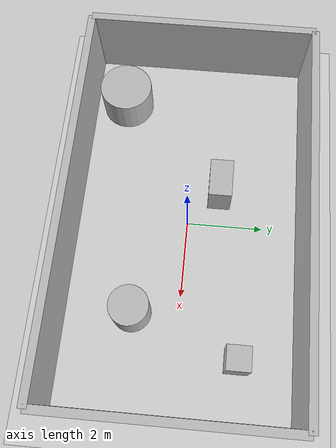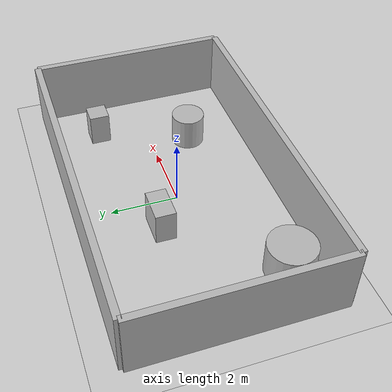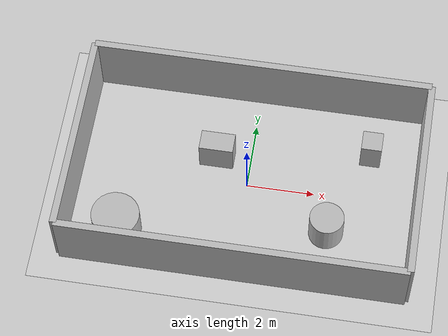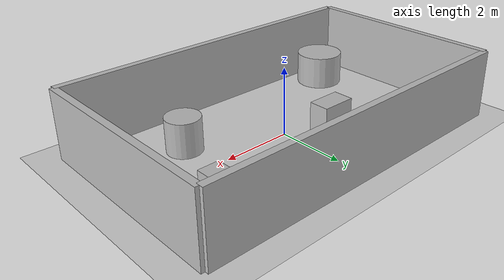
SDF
<?xml version="1.0"?>
<sdf version="1.6">
  <world name="movement_env_20">

    <include><uri>model://ground_plane</uri></include>
    <include><uri>model://sun</uri></include>

    <!-- WALLS -->
    <model name="wall_north"><static>true</static><pose>0 3.0 1 0 0 0</pose>
      <link name="link"><collision name="col">
        <geometry><box><size>10.0 0.2 2</size></box></geometry>
      </collision><visual name="vis">
        <geometry><box><size>10.0 0.2 2</size></box></geometry>
      </visual></link>
    </model>

    <model name="wall_south"><static>true</static><pose>0 -3.0 1 0 0 0</pose>
      <link name="link"><collision name="col">
        <geometry><box><size>10.0 0.2 2</size></box></geometry>
      </collision><visual name="vis">
        <geometry><box><size>10.0 0.2 2</size></box></geometry>
      </visual></link>
    </model>

    <model name="wall_east"><static>true</static><pose>5.0 0 1 0 0 1.57</pose>
      <link name="link"><collision name="col">
        <geometry><box><size>6.0 0.2 2</size></box></geometry>
      </collision><visual name="vis">
        <geometry><box><size>6.0 0.2 2</size></box></geometry>
      </visual></link>
    </model>

    <model name="wall_west"><static>true</static><pose>-5.0 0 1 0 0 1.57</pose>
      <link name="link"><collision name="col">
        <geometry><box><size>6.0 0.2 2</size></box></geometry>
      </collision><visual name="vis">
        <geometry><box><size>6.0 0.2 2</size></box></geometry>
      </visual></link>
    </model>

    <!-- SENSOR -->

    <model name="lidar_sensor">
      <static>true</static>
      <pose>2.666666666666667 0.0 0.4 0 0 0.0</pose>
      <link name="link">
        <sensor name="lidar" type="ray">
          <pose>0 0 0 0 0 0</pose>
          <visualize>true</visualize>
          <always_on>true</always_on>
          <update_rate>10</update_rate>
          <ray>
            <scan><horizontal>
              <samples>360</samples>
              <resolution>1</resolution>
              <min_angle>-3.14159</min_angle>
              <max_angle>3.14159</max_angle>
            </horizontal></scan>
            <range><min>0.15</min><max>20.0</max><resolution>0.01</resolution></range>
          </ray>
          <plugin name="lidar_plugin" filename="liblidar_plugin.so"/>
        </sensor>
      </link>
    </model>

    <!-- OBSTACLES -->

    <model name="obs_0">
      <static>true</static>
      <pose>-1.0 0.8 0.5 0 0 0</pose>
      <link name="link">
        <collision name="col">
          <geometry><box><size>1.0 0.6 1.0</size></box></geometry>
        </collision>
        <visual name="vis">
          <geometry><box><size>1.0 0.6 1.0</size></box></geometry>
        </visual>
      </link>
    </model>

    <model name="obs_1">
      <static>true</static>
      <pose>2.5 -1.2 0.5 0 0 0</pose>
      <link name="link">
        <collision name="col">
          <geometry><cylinder><radius>0.5</radius><length>1.0</length></cylinder></geometry>
        </collision>
        <visual name="vis">
          <geometry><cylinder><radius>0.5</radius><length>1.0</length></cylinder></geometry>
        </visual>
      </link>
    </model>

    <model name="obs_2">
      <static>true</static>
      <pose>3.5 1.5 0.5 0 0 0</pose>
      <link name="link">
        <collision name="col">
          <geometry><box><size>0.6 0.6 1.0</size></box></geometry>
        </collision>
        <visual name="vis">
          <geometry><box><size>0.6 0.6 1.0</size></box></geometry>
        </visual>
      </link>
    </model>

    <model name="obs_3">
      <static>true</static>
      <pose>-3.5 -2.0 0.5 0 0 0</pose>
      <link name="link">
        <collision name="col">
          <geometry><cylinder><radius>0.7</radius><length>1.0</length></cylinder></geometry>
        </collision>
        <visual name="vis">
          <geometry><cylinder><radius>0.7</radius><length>1.0</length></cylinder></geometry>
        </visual>
      </link>
    </model>

  </world>
</sdf>
